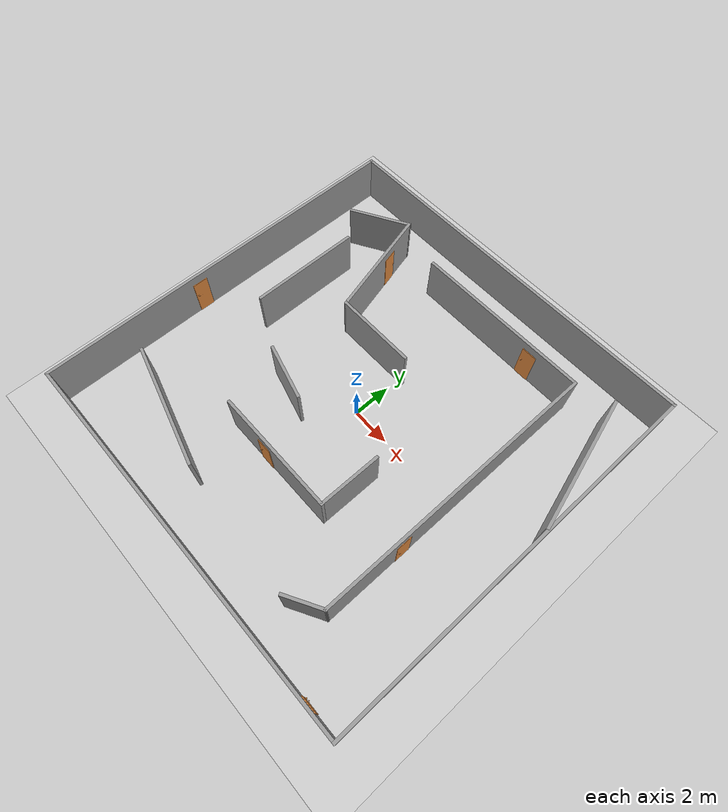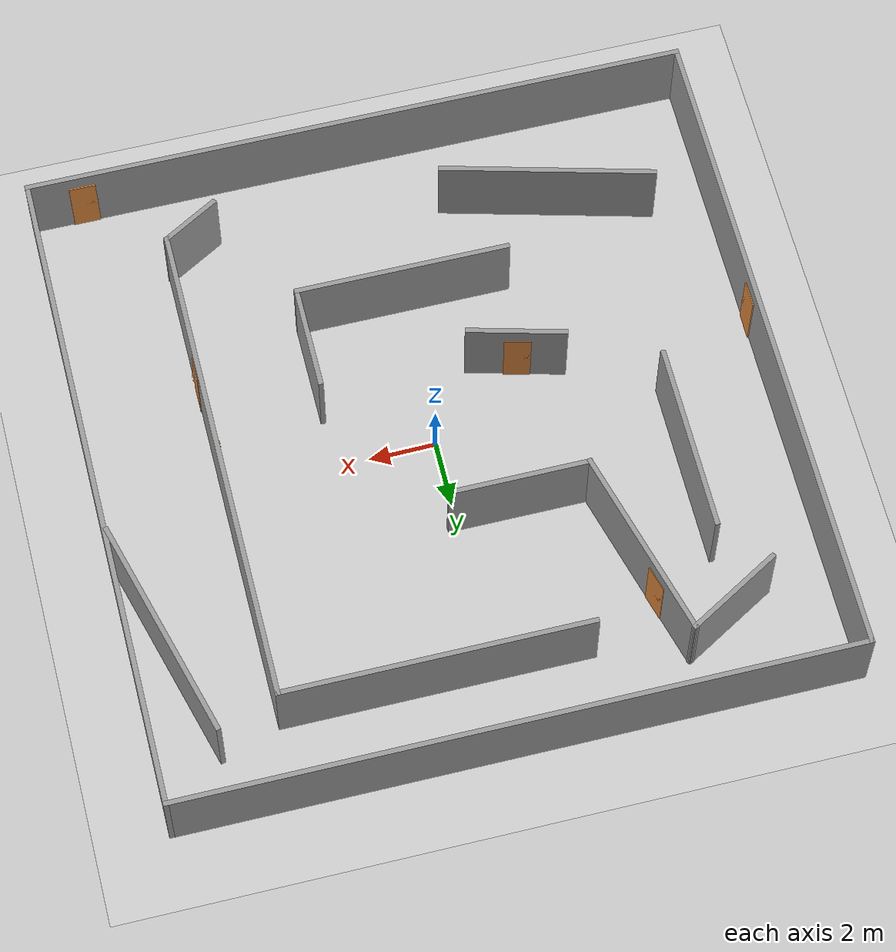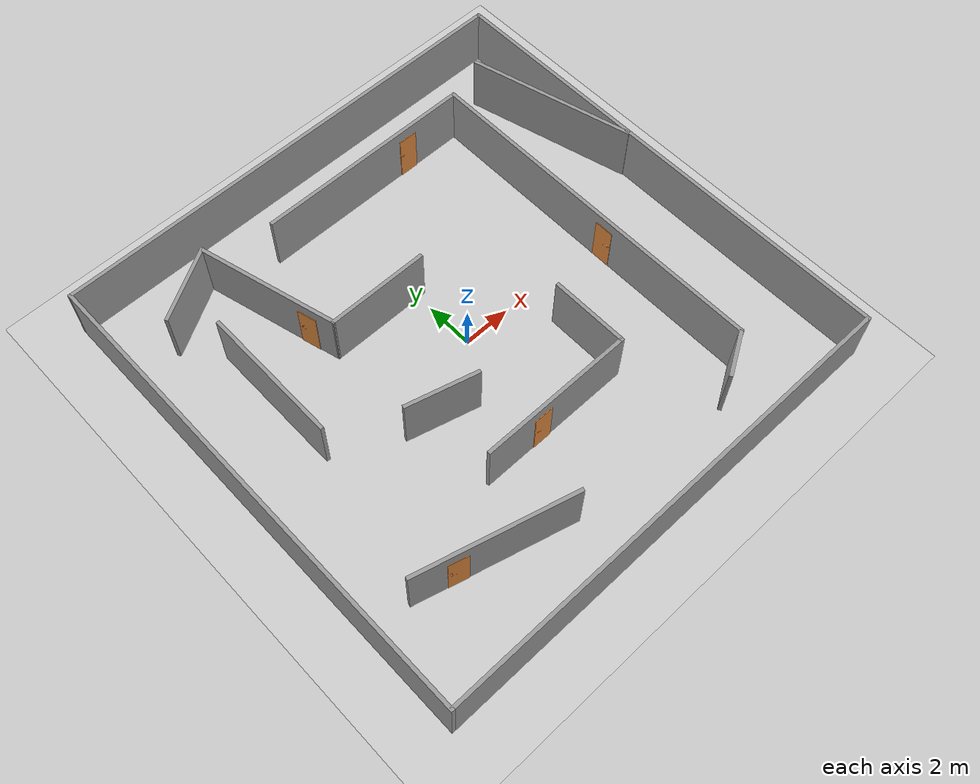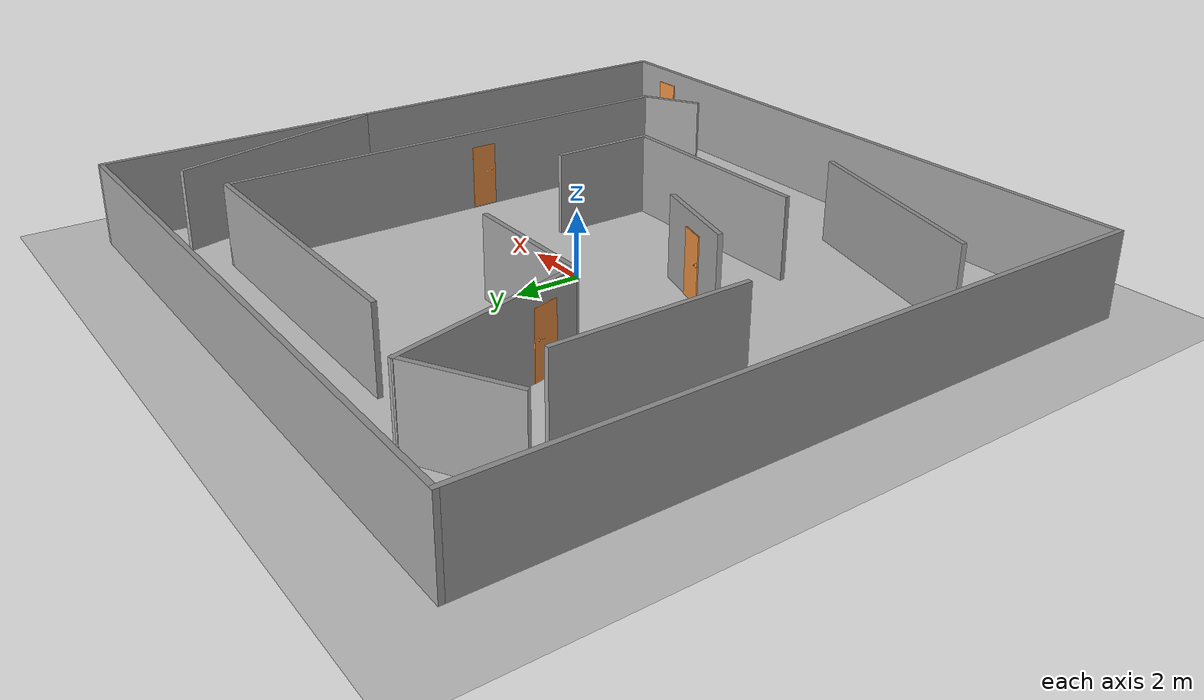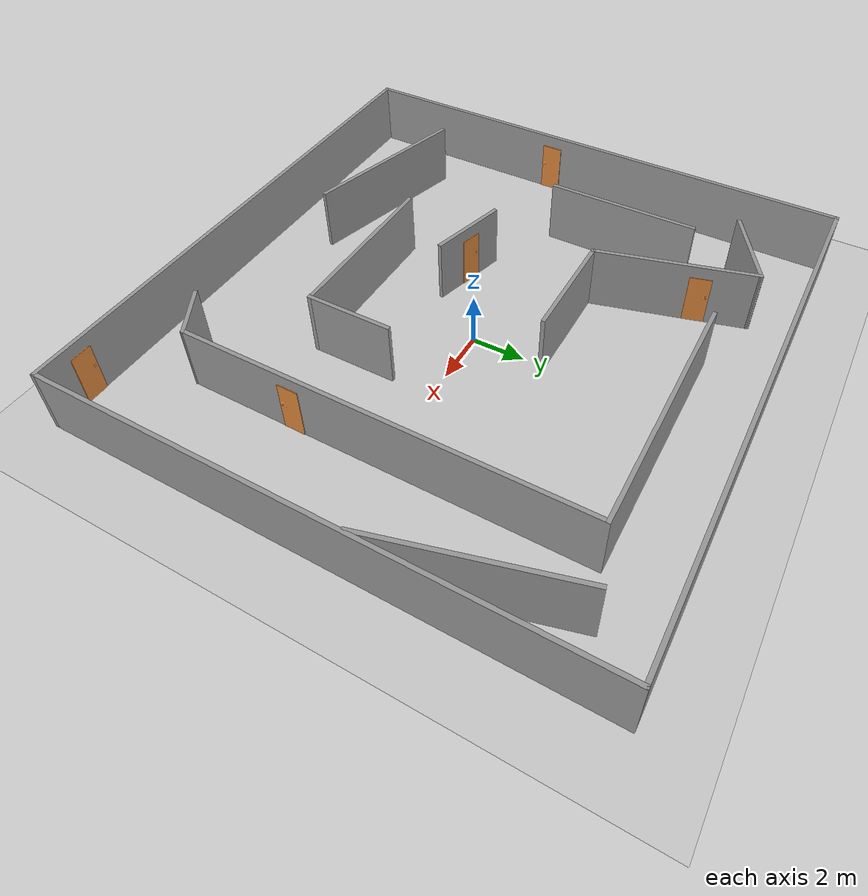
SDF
<sdf version="1.6">
 <world name="default">
  <light name="sun" type="directional">
   <pose>0 0 10 0 -0 0</pose>
   <diffuse>0.8 0.8 0.8 1</diffuse>
   <specular>0.2 0.2 0.2 1</specular>
   <attenuation>
    <range>1000</range>
    <constant>0.9</constant>
    <linear>0.01</linear>
    <quadratic>0.001</quadratic>
   </attenuation>
   <direction>-0.5 0.1 -0.9</direction>
  </light>
  <model name="ground_plane">
   <static>1</static>
   <link name="link">
    <collision name="collision">
     <geometry><plane><normal>0 0 1</normal><size>100 100</size></plane></geometry>
     <surface>
      <contact><collide_bitmask>65535</collide_bitmask></contact>
      <friction><ode><mu>100</mu><mu2>50</mu2></ode></friction>
     </surface>
    </collision>
    <visual name="visual">
     <cast_shadows>0</cast_shadows>
     <geometry><plane><normal>0 0 1</normal><size>100 100</size></plane></geometry>
     <material>
      <script><uri>file://media/materials/scripts/gazebo.material</uri><name>Gazebo/Grey</name></script>
     </material>
    </visual>
   </link>
  </model>
  <gravity>0 0 -9.8</gravity>
  <magnetic_field>6e-06 2.3e-05 -4.2e-05</magnetic_field>
  <atmosphere type="adiabatic"/>
  <physics name="default_physics" default="0" type="ode">
   <max_step_size>0.001</max_step_size>
   <real_time_factor>1</real_time_factor>
   <real_time_update_rate>1000</real_time_update_rate>
  </physics>
  <scene><ambient>0.4 0.4 0.4 1</ambient><background>0.7 0.7 0.7 1</background><shadows>1</shadows></scene>
  <audio><device>default</device></audio>
  <spherical_coordinates>
   <surface_model>EARTH_WGS84</surface_model>
   <latitude_deg>0</latitude_deg>
   <longitude_deg>0</longitude_deg>
   <elevation>0</elevation>
   <heading_deg>0</heading_deg>
  </spherical_coordinates>
  <model name="random">
   <link name="Wall_10">
    <collision name="Wall_10_Collision">
     <geometry><box><size>3 0.15 2.5</size></box></geometry>
     <pose>0 0 1.25 0 -0 0</pose>
    </collision>
    <visual name="Wall_10_Visual">
     <pose>0 0 1.25 0 -0 0</pose>
     <geometry><box><size>3 0.15 2.5</size></box></geometry>
     <material>
      <script><uri>file://media/materials/scripts/gazebo.material</uri><name>Gazebo/Grey</name></script>
      <ambient>1 1 1 1</ambient>
     </material>
     <meta><layer>0</layer></meta>
    </visual>
    <pose>-2.88006 -1.82082 0 0 -0 -0.261799</pose>
   </link>
   <link name="Wall_12">
    <collision name="Wall_12_Collision">
     <geometry><box><size>3.25 0.15 2.5</size></box></geometry>
     <pose>0 0 1.25 0 -0 0</pose>
    </collision>
    <visual name="Wall_12_Visual">
     <pose>0 0 1.25 0 -0 0</pose>
     <geometry><box><size>3.25 0.15 2.5</size></box></geometry>
     <material>
      <script><uri>file://media/materials/scripts/gazebo.material</uri><name>Gazebo/Grey</name></script>
      <ambient>1 1 1 1</ambient>
     </material>
     <meta><layer>0</layer></meta>
    </visual>
    <pose>3.023 -3.1055 0 0 -0 -1.5708</pose>
   </link>
   <link name="Wall_13">
    <collision name="Wall_13_Collision">
     <geometry><box><size>6.5 0.15 2.5</size></box></geometry>
     <pose>0 0 1.25 0 -0 0</pose>
    </collision>
    <visual name="Wall_13_Visual">
     <pose>0 0 1.25 0 -0 0</pose>
     <geometry><box><size>6.5 0.15 2.5</size></box></geometry>
     <material>
      <script><uri>file://media/materials/scripts/gazebo.material</uri><name>Gazebo/Grey</name></script>
      <ambient>1 1 1 1</ambient>
     </material>
     <meta><layer>0</layer></meta>
    </visual>
    <pose>-0.152 -4.6555 0 0 -0 3.14159</pose>
   </link>
   <link name="Wall_15">
    <collision name="Wall_15_Collision">
     <geometry><box><size>5.75 0.15 2.5</size></box></geometry>
     <pose>0 0 1.25 0 -0 0</pose>
    </collision>
    <visual name="Wall_15_Visual">
     <pose>0 0 1.25 0 -0 0</pose>
     <geometry><box><size>5.75 0.15 2.5</size></box></geometry>
     <material>
      <script><uri>file://media/materials/scripts/gazebo.material</uri><name>Gazebo/Grey</name></script>
      <ambient>1 1 1 1</ambient>
     </material>
     <meta><layer>0</layer></meta>
    </visual>
    <pose>-6.8325 2.682 0 0 -0 1.5708</pose>
   </link>
   <link name="Wall_17">
    <collision name="Wall_17_Collision">
     <geometry><box><size>9.25 0.15 2.5</size></box></geometry>
     <pose>0 0 1.25 0 -0 0</pose>
    </collision>
    <visual name="Wall_17_Visual">
     <pose>0 0 1.25 0 -0 0</pose>
     <geometry><box><size>9.25 0.15 2.5</size></box></geometry>
     <material>
      <script><uri>file://media/materials/scripts/gazebo.material</uri><name>Gazebo/Grey</name></script>
      <ambient>1 1 1 1</ambient>
     </material>
     <meta><layer>0</layer></meta>
    </visual>
    <pose>1.7951 7.57362 0 0 -0 0</pose>
   </link>
   <link name="Wall_18">
    <collision name="Wall_18_Collision">
     <geometry><box><size>15 0.15 2.5</size></box></geometry>
     <pose>0 0 1.25 0 -0 0</pose>
    </collision>
    <visual name="Wall_18_Visual">
     <pose>0 0 1.25 0 -0 0</pose>
     <geometry><box><size>15 0.15 2.5</size></box></geometry>
     <material>
      <script><uri>file://media/materials/scripts/gazebo.material</uri><name>Gazebo/Grey</name></script>
      <ambient>1 1 1 1</ambient>
     </material>
     <meta><layer>0</layer></meta>
    </visual>
    <pose>6.3451 0.148619 0 0 -0 -1.5708</pose>
   </link>
   <link name="Wall_19">
    <collision name="Wall_19_Collision">
     <geometry><box><size>2 0.15 2.5</size></box></geometry>
     <pose>0 0 1.25 0 -0 0</pose>
    </collision>
    <visual name="Wall_19_Visual">
     <pose>0 0 1.25 0 -0 0</pose>
     <geometry><box><size>2 0.15 2.5</size></box></geometry>
     <material>
      <script><uri>file://media/materials/scripts/gazebo.material</uri><name>Gazebo/Grey</name></script>
      <ambient>1 1 1 1</ambient>
     </material>
     <meta><layer>0</layer></meta>
    </visual>
    <pose>5.54403 -7.73888 0 0 -0 -2.61799</pose>
   </link>
   <link name="Wall_2">
    <collision name="Wall_2_Collision">
     <geometry><box><size>20.15 0.15 2.5</size></box></geometry>
     <pose>0 0 1.25 0 -0 0</pose>
    </collision>
    <visual name="Wall_2_Visual">
     <pose>0 0 1.25 0 -0 0</pose>
     <geometry><box><size>20.15 0.15 2.5</size></box></geometry>
     <material>
      <script><uri>file://media/materials/scripts/gazebo.material</uri><name>Gazebo/Grey</name></script>
      <ambient>1 1 1 1</ambient>
     </material>
     <meta><layer>0</layer></meta>
    </visual>
    <pose>10 0 0 0 -0 -1.5708</pose>
   </link>
   <link name="Wall_21">
    <collision name="Wall_21_Collision">
     <geometry><box><size>4.25 0.15 2.5</size></box></geometry>
     <pose>0 0 1.25 0 -0 0</pose>
    </collision>
    <visual name="Wall_21_Visual">
     <pose>0 0 1.25 0 -0 0</pose>
     <geometry><box><size>4.25 0.15 2.5</size></box></geometry>
     <material>
      <script><uri>file://media/materials/scripts/gazebo.material</uri><name>Gazebo/Grey</name></script>
      <ambient>1 1 1 1</ambient>
     </material>
     <meta><layer>0</layer></meta>
    </visual>
    <pose>-1.81119 2.75941 0 0 -0 3.14159</pose>
   </link>
   <link name="Wall_22">
    <collision name="Wall_22_Collision">
     <geometry><box><size>6 0.15 2.5</size></box></geometry>
     <pose>0 0 1.25 0 -0 0</pose>
    </collision>
    <visual name="Wall_22_Visual">
     <pose>0 0 1.25 0 -0 0</pose>
     <geometry><box><size>6 0.15 2.5</size></box></geometry>
     <material>
      <script><uri>file://media/materials/scripts/gazebo.material</uri><name>Gazebo/Grey</name></script>
      <ambient>1 1 1 1</ambient>
     </material>
     <meta><layer>0</layer></meta>
    </visual>
    <pose>-4.61823 5.58474 0 0 -0 1.8326</pose>
   </link>
   <link name="Wall_23">
    <collision name="Wall_23_Collision">
     <geometry><box><size>3.25 0.15 2.5</size></box></geometry>
     <pose>0 0 1.25 0 -0 0</pose>
    </collision>
    <visual name="Wall_23_Visual">
     <pose>0 0 1.25 0 -0 0</pose>
     <geometry><box><size>3.25 0.15 2.5</size></box></geometry>
     <material>
      <script><uri>file://media/materials/scripts/gazebo.material</uri><name>Gazebo/Grey</name></script>
      <ambient>1 1 1 1</ambient>
     </material>
     <meta><layer>0</layer></meta>
    </visual>
    <pose>-6.71762 7.63507 0 0 -0 -2.61799</pose>
   </link>
   <link name="Wall_25">
    <collision name="Wall_25_Collision">
     <geometry><box><size>6.5 0.15 2.5</size></box></geometry>
     <pose>0 0 1.25 0 -0 0</pose>
    </collision>
    <visual name="Wall_25_Visual">
     <pose>0 0 1.25 0 -0 0</pose>
     <geometry><box><size>6.5 0.15 2.5</size></box></geometry>
     <material>
      <script><uri>file://media/materials/scripts/gazebo.material</uri><name>Gazebo/Grey</name></script>
      <ambient>1 1 1 1</ambient>
     </material>
     <meta><layer>0</layer></meta>
    </visual>
    <pose>-5.14959 -6.88166 0 0 -0 -0.261799</pose>
   </link>
   <link name="Wall_27">
    <collision name="Wall_27_Collision">
     <geometry><box><size>7 0.15 2.5</size></box></geometry>
     <pose>0 0 1.25 0 -0 0</pose>
    </collision>
    <visual name="Wall_27_Visual">
     <pose>0 0 1.25 0 -0 0</pose>
     <geometry><box><size>7 0.15 2.5</size></box></geometry>
     <material>
      <script><uri>file://media/materials/scripts/gazebo.material</uri><name>Gazebo/Grey</name></script>
      <ambient>1 1 1 1</ambient>
     </material>
     <meta><layer>0</layer></meta>
    </visual>
    <pose>9.05456 4.87216 0 0 -0 -1.309</pose>
   </link>
   <link name="Wall_4">
    <collision name="Wall_4_Collision">
     <geometry><box><size>20.15 0.15 2.5</size></box></geometry>
     <pose>0 0 1.25 0 -0 0</pose>
    </collision>
    <visual name="Wall_4_Visual">
     <pose>0 0 1.25 0 -0 0</pose>
     <geometry><box><size>20.15 0.15 2.5</size></box></geometry>
     <material>
      <script><uri>file://media/materials/scripts/gazebo.material</uri><name>Gazebo/Grey</name></script>
      <ambient>1 1 1 1</ambient>
     </material>
     <meta><layer>0</layer></meta>
    </visual>
    <pose>0 10 0 0 -0 3.14159</pose>
   </link>
   <link name="Wall_6">
    <collision name="Wall_6_Collision">
     <geometry><box><size>20.15 0.15 2.5</size></box></geometry>
     <pose>0 0 1.25 0 -0 0</pose>
    </collision>
    <visual name="Wall_6_Visual">
     <pose>0 0 1.25 0 -0 0</pose>
     <geometry><box><size>20.15 0.15 2.5</size></box></geometry>
     <material>
      <script><uri>file://media/materials/scripts/gazebo.material</uri><name>Gazebo/Grey</name></script>
      <ambient>1 1 1 1</ambient>
     </material>
     <meta><layer>0</layer></meta>
    </visual>
    <pose>0 -10 0 0 -0 3.14159</pose>
   </link>
   <link name="Wall_8">
    <collision name="Wall_8_Collision">
     <geometry><box><size>20.15 0.15 2.5</size></box></geometry>
     <pose>0 0 1.25 0 -0 0</pose>
    </collision>
    <visual name="Wall_8_Visual">
     <pose>0 0 1.25 0 -0 0</pose>
     <geometry><box><size>20.15 0.15 2.5</size></box></geometry>
     <material>
      <script><uri>file://media/materials/scripts/gazebo.material</uri><name>Gazebo/Grey</name></script>
      <ambient>1 1 1 1</ambient>
     </material>
     <meta><layer>0</layer></meta>
    </visual>
    <pose>-10 0 0 0 -0 -1.5708</pose>
   </link>
   <static>1</static>
  </model>
  <model name="door_stand">
   <model name="door">
    <link name="link_0">
     <inertial>
      <mass>1</mass>
      <inertia>
       <ixx>0.166667</ixx>
       <ixy>0</ixy>
       <ixz>0</ixz>
       <iyy>0.166667</iyy>
       <iyz>0</iyz>
       <izz>0.166667</izz>
      </inertia>
     </inertial>
     <visual name="visual">
      <geometry>
       <mesh><uri>/home/msjun-xavier/Downloads/door_C.obj</uri><scale>0.002 0.002 0.001</scale></mesh>
      </geometry>
      <material>
       <lighting>1</lighting>
       <script><uri>file://media/materials/scripts/gazebo.material</uri><name>Gazebo/Grey</name></script>
       <shader type="vertex"><normal_map>__default__</normal_map></shader>
       <ambient>0.875 0.533 0.239 1</ambient>
       <diffuse>0.7 0.7 0.7 1</diffuse>
       <specular>0.01 0.01 0.01 1</specular>
       <emissive>0 0 0 1</emissive>
      </material>
     </visual>
     <collision name="collision">
      <geometry>
       <mesh><uri>/home/msjun-xavier/Downloads/door_C.obj</uri><scale>0.002 0.002 0.001</scale></mesh>
      </geometry>
      <surface>
       <friction>
        <ode><mu>1</mu><mu2>1</mu2><fdir1>0 0 0</fdir1><slip1>0</slip1><slip2>0</slip2></ode>
        <torsional>
         <coefficient>1</coefficient>
         <patch_radius>0</patch_radius>
         <surface_radius>0</surface_radius>
         <use_patch_radius>1</use_patch_radius>
         <ode><slip>0</slip></ode>
        </torsional>
       </friction>
       <bounce><restitution_coefficient>0</restitution_coefficient><threshold>1e+06</threshold></bounce>
       <contact>
        <collide_without_contact>0</collide_without_contact>
        <collide_without_contact_bitmask>1</collide_without_contact_bitmask>
        <collide_bitmask>1</collide_bitmask>
        <ode>
         <soft_cfm>0</soft_cfm>
         <soft_erp>0.2</soft_erp>
         <kp>1e+13</kp>
         <kd>1</kd>
         <max_vel>0.01</max_vel>
         <min_depth>0</min_depth>
        </ode>
        <bullet>
         <split_impulse>1</split_impulse>
         <split_impulse_penetration_threshold>-0.01</split_impulse_penetration_threshold>
         <soft_cfm>0</soft_cfm>
         <soft_erp>0.2</soft_erp>
         <kp>1e+13</kp>
         <kd>1</kd>
        </bullet>
       </contact>
      </surface>
     </collision>
    </link>
    <static>1</static>
    <pose>1e-06 5e-06 0 3.09892 1.53609 -1.61633</pose>
   </model>
   <static>0</static>
   <pose>3.70681 7.37535 1.06405 0 -0 0</pose>
  </model>
  <model name="door_stand_0">
   <model name="door">
    <link name="link_0">
     <inertial>
      <mass>1</mass>
      <inertia>
       <ixx>0.166667</ixx>
       <ixy>0</ixy>
       <ixz>0</ixz>
       <iyy>0.166667</iyy>
       <iyz>0</iyz>
       <izz>0.166667</izz>
      </inertia>
     </inertial>
     <visual name="visual">
      <geometry>
       <mesh><uri>/home/msjun-xavier/Downloads/door_C.obj</uri><scale>0.002 0.002 0.001</scale></mesh>
      </geometry>
      <material>
       <lighting>1</lighting>
       <script><uri>file://media/materials/scripts/gazebo.material</uri><name>Gazebo/Grey</name></script>
       <shader type="vertex"><normal_map>__default__</normal_map></shader>
       <ambient>0.875 0.533 0.239 1</ambient>
       <diffuse>0.7 0.7 0.7 1</diffuse>
       <specular>0.01 0.01 0.01 1</specular>
       <emissive>0 0 0 1</emissive>
      </material>
     </visual>
     <collision name="collision">
      <geometry>
       <mesh><uri>/home/msjun-xavier/Downloads/door_C.obj</uri><scale>0.002 0.002 0.001</scale></mesh>
      </geometry>
      <surface>
       <friction>
        <ode><mu>1</mu><mu2>1</mu2><fdir1>0 0 0</fdir1><slip1>0</slip1><slip2>0</slip2></ode>
        <torsional>
         <coefficient>1</coefficient>
         <patch_radius>0</patch_radius>
         <surface_radius>0</surface_radius>
         <use_patch_radius>1</use_patch_radius>
         <ode><slip>0</slip></ode>
        </torsional>
       </friction>
       <bounce><restitution_coefficient>0</restitution_coefficient><threshold>1e+06</threshold></bounce>
       <contact>
        <collide_without_contact>0</collide_without_contact>
        <collide_without_contact_bitmask>1</collide_without_contact_bitmask>
        <collide_bitmask>1</collide_bitmask>
        <ode>
         <soft_cfm>0</soft_cfm>
         <soft_erp>0.2</soft_erp>
         <kp>1e+13</kp>
         <kd>1</kd>
         <max_vel>0.01</max_vel>
         <min_depth>0</min_depth>
        </ode>
        <bullet>
         <split_impulse>1</split_impulse>
         <split_impulse_penetration_threshold>-0.01</split_impulse_penetration_threshold>
         <soft_cfm>0</soft_cfm>
         <soft_erp>0.2</soft_erp>
         <kp>1e+13</kp>
         <kd>1</kd>
        </bullet>
       </contact>
      </surface>
     </collision>
    </link>
    <static>1</static>
    <pose>1e-06 5e-06 0 3.09892 1.53609 -1.61633</pose>
   </model>
   <static>0</static>
   <pose>6.38084 -0.863586 1.07618 0 -0 1.5708</pose>
  </model>
  <model name="door_stand_1">
   <model name="door">
    <link name="link_0">
     <inertial>
      <mass>1</mass>
      <inertia>
       <ixx>0.166667</ixx>
       <ixy>0</ixy>
       <ixz>0</ixz>
       <iyy>0.166667</iyy>
       <iyz>0</iyz>
       <izz>0.166667</izz>
      </inertia>
     </inertial>
     <visual name="visual">
      <geometry>
       <mesh><uri>/home/msjun-xavier/Downloads/door_C.obj</uri><scale>0.002 0.002 0.001</scale></mesh>
      </geometry>
      <material>
       <lighting>1</lighting>
       <script><uri>file://media/materials/scripts/gazebo.material</uri><name>Gazebo/Grey</name></script>
       <shader type="vertex"><normal_map>__default__</normal_map></shader>
       <ambient>0.875 0.533 0.239 1</ambient>
       <diffuse>0.7 0.7 0.7 1</diffuse>
       <specular>0.01 0.01 0.01 1</specular>
       <emissive>0 0 0 1</emissive>
      </material>
     </visual>
     <collision name="collision">
      <geometry>
       <mesh><uri>/home/msjun-xavier/Downloads/door_C.obj</uri><scale>0.002 0.002 0.001</scale></mesh>
      </geometry>
      <surface>
       <friction>
        <ode><mu>1</mu><mu2>1</mu2><fdir1>0 0 0</fdir1><slip1>0</slip1><slip2>0</slip2></ode>
        <torsional>
         <coefficient>1</coefficient>
         <patch_radius>0</patch_radius>
         <surface_radius>0</surface_radius>
         <use_patch_radius>1</use_patch_radius>
         <ode><slip>0</slip></ode>
        </torsional>
       </friction>
       <bounce><restitution_coefficient>0</restitution_coefficient><threshold>1e+06</threshold></bounce>
       <contact>
        <collide_without_contact>0</collide_without_contact>
        <collide_without_contact_bitmask>1</collide_without_contact_bitmask>
        <collide_bitmask>1</collide_bitmask>
        <ode>
         <soft_cfm>0</soft_cfm>
         <soft_erp>0.2</soft_erp>
         <kp>1e+13</kp>
         <kd>1</kd>
         <max_vel>0.01</max_vel>
         <min_depth>0</min_depth>
        </ode>
        <bullet>
         <split_impulse>1</split_impulse>
         <split_impulse_penetration_threshold>-0.01</split_impulse_penetration_threshold>
         <soft_cfm>0</soft_cfm>
         <soft_erp>0.2</soft_erp>
         <kp>1e+13</kp>
         <kd>1</kd>
        </bullet>
       </contact>
      </surface>
     </collision>
    </link>
    <static>1</static>
    <pose>1e-06 5e-06 0 3.09892 1.53609 -1.61633</pose>
   </model>
   <static>0</static>
   <pose>-3.03167 -1.80133 1.06405 -0 -0 -0.262828</pose>
  </model>
  <model name="door_stand_2">
   <model name="door">
    <link name="link_0">
     <inertial>
      <mass>1</mass>
      <inertia>
       <ixx>0.166667</ixx>
       <ixy>0</ixy>
       <ixz>0</ixz>
       <iyy>0.166667</iyy>
       <iyz>0</iyz>
       <izz>0.166667</izz>
      </inertia>
     </inertial>
     <visual name="visual">
      <geometry>
       <mesh><uri>/home/msjun-xavier/Downloads/door_C.obj</uri><scale>0.002 0.002 0.001</scale></mesh>
      </geometry>
      <material>
       <lighting>1</lighting>
       <script><uri>file://media/materials/scripts/gazebo.material</uri><name>Gazebo/Grey</name></script>
       <shader type="vertex"><normal_map>__default__</normal_map></shader>
       <ambient>0.875 0.533 0.239 1</ambient>
       <diffuse>0.7 0.7 0.7 1</diffuse>
       <specular>0.01 0.01 0.01 1</specular>
       <emissive>0 0 0 1</emissive>
      </material>
     </visual>
     <collision name="collision">
      <geometry>
       <mesh><uri>/home/msjun-xavier/Downloads/door_C.obj</uri><scale>0.002 0.002 0.001</scale></mesh>
      </geometry>
      <surface>
       <friction>
        <ode><mu>1</mu><mu2>1</mu2><fdir1>0 0 0</fdir1><slip1>0</slip1><slip2>0</slip2></ode>
        <torsional>
         <coefficient>1</coefficient>
         <patch_radius>0</patch_radius>
         <surface_radius>0</surface_radius>
         <use_patch_radius>1</use_patch_radius>
         <ode><slip>0</slip></ode>
        </torsional>
       </friction>
       <bounce><restitution_coefficient>0</restitution_coefficient><threshold>1e+06</threshold></bounce>
       <contact>
        <collide_without_contact>0</collide_without_contact>
        <collide_without_contact_bitmask>1</collide_without_contact_bitmask>
        <collide_bitmask>1</collide_bitmask>
        <ode>
         <soft_cfm>0</soft_cfm>
         <soft_erp>0.2</soft_erp>
         <kp>1e+13</kp>
         <kd>1</kd>
         <max_vel>0.01</max_vel>
         <min_depth>0</min_depth>
        </ode>
        <bullet>
         <split_impulse>1</split_impulse>
         <split_impulse_penetration_threshold>-0.01</split_impulse_penetration_threshold>
         <soft_cfm>0</soft_cfm>
         <soft_erp>0.2</soft_erp>
         <kp>1e+13</kp>
         <kd>1</kd>
        </bullet>
       </contact>
      </surface>
     </collision>
    </link>
    <static>1</static>
    <pose>1e-06 5e-06 0 3.09892 1.53609 -1.61633</pose>
   </model>
   <static>0</static>
   <pose>-0.949542 -4.85347 1.06405 0 -0 0</pose>
  </model>
  <model name="door_stand_3">
   <model name="door">
    <link name="link_0">
     <inertial>
      <mass>1</mass>
      <inertia>
       <ixx>0.166667</ixx>
       <ixy>0</ixy>
       <ixz>0</ixz>
       <iyy>0.166667</iyy>
       <iyz>0</iyz>
       <izz>0.166667</izz>
      </inertia>
     </inertial>
     <visual name="visual">
      <geometry>
       <mesh><uri>/home/msjun-xavier/Downloads/door_C.obj</uri><scale>0.002 0.002 0.001</scale></mesh>
      </geometry>
      <material>
       <lighting>1</lighting>
       <script><uri>file://media/materials/scripts/gazebo.material</uri><name>Gazebo/Grey</name></script>
       <shader type="vertex"><normal_map>__default__</normal_map></shader>
       <ambient>0.875 0.533 0.239 1</ambient>
       <diffuse>0.7 0.7 0.7 1</diffuse>
       <specular>0.01 0.01 0.01 1</specular>
       <emissive>0 0 0 1</emissive>
      </material>
     </visual>
     <collision name="collision">
      <geometry>
       <mesh><uri>/home/msjun-xavier/Downloads/door_C.obj</uri><scale>0.002 0.002 0.001</scale></mesh>
      </geometry>
      <surface>
       <friction>
        <ode><mu>1</mu><mu2>1</mu2><fdir1>0 0 0</fdir1><slip1>0</slip1><slip2>0</slip2></ode>
        <torsional>
         <coefficient>1</coefficient>
         <patch_radius>0</patch_radius>
         <surface_radius>0</surface_radius>
         <use_patch_radius>1</use_patch_radius>
         <ode><slip>0</slip></ode>
        </torsional>
       </friction>
       <bounce><restitution_coefficient>0</restitution_coefficient><threshold>1e+06</threshold></bounce>
       <contact>
        <collide_without_contact>0</collide_without_contact>
        <collide_without_contact_bitmask>1</collide_without_contact_bitmask>
        <collide_bitmask>1</collide_bitmask>
        <ode>
         <soft_cfm>0</soft_cfm>
         <soft_erp>0.2</soft_erp>
         <kp>1e+13</kp>
         <kd>1</kd>
         <max_vel>0.01</max_vel>
         <min_depth>0</min_depth>
        </ode>
        <bullet>
         <split_impulse>1</split_impulse>
         <split_impulse_penetration_threshold>-0.01</split_impulse_penetration_threshold>
         <soft_cfm>0</soft_cfm>
         <soft_erp>0.2</soft_erp>
         <kp>1e+13</kp>
         <kd>1</kd>
        </bullet>
       </contact>
      </surface>
     </collision>
    </link>
    <static>1</static>
    <pose>1e-06 5e-06 0 3.09892 1.53609 -1.61633</pose>
   </model>
   <static>0</static>
   <pose>-4.93339 6.6173 1.06405 0 -0 -1.30205</pose>
  </model>
  <model name="door_stand_4">
   <model name="door">
    <link name="link_0">
     <inertial>
      <mass>1</mass>
      <inertia>
       <ixx>0.166667</ixx>
       <ixy>0</ixy>
       <ixz>0</ixz>
       <iyy>0.166667</iyy>
       <iyz>0</iyz>
       <izz>0.166667</izz>
      </inertia>
     </inertial>
     <visual name="visual">
      <geometry>
       <mesh><uri>/home/msjun-xavier/Downloads/door_C.obj</uri><scale>0.002 0.002 0.001</scale></mesh>
      </geometry>
      <material>
       <lighting>1</lighting>
       <script><uri>file://media/materials/scripts/gazebo.material</uri><name>Gazebo/Grey</name></script>
       <shader type="vertex"><normal_map>__default__</normal_map></shader>
       <ambient>0.875 0.533 0.239 1</ambient>
       <diffuse>0.7 0.7 0.7 1</diffuse>
       <specular>0.01 0.01 0.01 1</specular>
       <emissive>0 0 0 1</emissive>
      </material>
     </visual>
     <collision name="collision">
      <geometry>
       <mesh><uri>/home/msjun-xavier/Downloads/door_C.obj</uri><scale>0.002 0.002 0.001</scale></mesh>
      </geometry>
      <surface>
       <friction>
        <ode><mu>1</mu><mu2>1</mu2><fdir1>0 0 0</fdir1><slip1>0</slip1><slip2>0</slip2></ode>
        <torsional>
         <coefficient>1</coefficient>
         <patch_radius>0</patch_radius>
         <surface_radius>0</surface_radius>
         <use_patch_radius>1</use_patch_radius>
         <ode><slip>0</slip></ode>
        </torsional>
       </friction>
       <bounce><restitution_coefficient>0</restitution_coefficient><threshold>1e+06</threshold></bounce>
       <contact>
        <collide_without_contact>0</collide_without_contact>
        <collide_without_contact_bitmask>1</collide_without_contact_bitmask>
        <collide_bitmask>1</collide_bitmask>
        <ode>
         <soft_cfm>0</soft_cfm>
         <soft_erp>0.2</soft_erp>
         <kp>1e+13</kp>
         <kd>1</kd>
         <max_vel>0.01</max_vel>
         <min_depth>0</min_depth>
        </ode>
        <bullet>
         <split_impulse>1</split_impulse>
         <split_impulse_penetration_threshold>-0.01</split_impulse_penetration_threshold>
         <soft_cfm>0</soft_cfm>
         <soft_erp>0.2</soft_erp>
         <kp>1e+13</kp>
         <kd>1</kd>
        </bullet>
       </contact>
      </surface>
     </collision>
    </link>
    <static>1</static>
    <pose>1e-06 5e-06 0 3.09892 1.53609 -1.61633</pose>
   </model>
   <static>0</static>
   <pose>6.53429 -3.21646 1.06405 0 -0 1.5708</pose>
  </model>
  <model name="door_stand_5">
   <model name="door">
    <link name="link_0">
     <inertial>
      <mass>1</mass>
      <inertia>
       <ixx>0.166667</ixx>
       <ixy>0</ixy>
       <ixz>0</ixz>
       <iyy>0.166667</iyy>
       <iyz>0</iyz>
       <izz>0.166667</izz>
      </inertia>
     </inertial>
     <visual name="visual">
      <geometry>
       <mesh><uri>/home/msjun-xavier/Downloads/door_C.obj</uri><scale>0.002 0.002 0.001</scale></mesh>
      </geometry>
      <material>
       <lighting>1</lighting>
       <script><uri>file://media/materials/scripts/gazebo.material</uri><name>Gazebo/Grey</name></script>
       <shader type="vertex"><normal_map>__default__</normal_map></shader>
       <ambient>0.875 0.533 0.239 1</ambient>
       <diffuse>0.7 0.7 0.7 1</diffuse>
       <specular>0.01 0.01 0.01 1</specular>
       <emissive>0 0 0 1</emissive>
      </material>
     </visual>
     <collision name="collision">
      <geometry>
       <mesh><uri>/home/msjun-xavier/Downloads/door_C.obj</uri><scale>0.002 0.002 0.001</scale></mesh>
      </geometry>
      <surface>
       <friction>
        <ode><mu>1</mu><mu2>1</mu2><fdir1>0 0 0</fdir1><slip1>0</slip1><slip2>0</slip2></ode>
        <torsional>
         <coefficient>1</coefficient>
         <patch_radius>0</patch_radius>
         <surface_radius>0</surface_radius>
         <use_patch_radius>1</use_patch_radius>
         <ode><slip>0</slip></ode>
        </torsional>
       </friction>
       <bounce><restitution_coefficient>0</restitution_coefficient><threshold>1e+06</threshold></bounce>
       <contact>
        <collide_without_contact>0</collide_without_contact>
        <collide_without_contact_bitmask>1</collide_without_contact_bitmask>
        <collide_bitmask>1</collide_bitmask>
        <ode>
         <soft_cfm>0</soft_cfm>
         <soft_erp>0.2</soft_erp>
         <kp>1e+13</kp>
         <kd>1</kd>
         <max_vel>0.01</max_vel>
         <min_depth>0</min_depth>
        </ode>
        <bullet>
         <split_impulse>1</split_impulse>
         <split_impulse_penetration_threshold>-0.01</split_impulse_penetration_threshold>
         <soft_cfm>0</soft_cfm>
         <soft_erp>0.2</soft_erp>
         <kp>1e+13</kp>
         <kd>1</kd>
        </bullet>
       </contact>
      </surface>
     </collision>
    </link>
    <static>1</static>
    <pose>1e-06 5e-06 0 3.09892 1.53609 -1.61633</pose>
   </model>
   <static>0</static>
   <pose>-4.37874 3.94523 1.06405 0 -0 -1.30544</pose>
  </model>
  <model name="door_stand_6">
   <model name="door">
    <link name="link_0">
     <inertial>
      <mass>1</mass>
      <inertia>
       <ixx>0.166667</ixx>
       <ixy>0</ixy>
       <ixz>0</ixz>
       <iyy>0.166667</iyy>
       <iyz>0</iyz>
       <izz>0.166667</izz>
      </inertia>
     </inertial>
     <visual name="visual">
      <geometry>
       <mesh><uri>/home/msjun-xavier/Downloads/door_C.obj</uri><scale>0.002 0.002 0.001</scale></mesh>
      </geometry>
      <material>
       <lighting>1</lighting>
       <script><uri>file://media/materials/scripts/gazebo.material</uri><name>Gazebo/Grey</name></script>
       <shader type="vertex"><normal_map>__default__</normal_map></shader>
       <ambient>0.875 0.533 0.239 1</ambient>
       <diffuse>0.7 0.7 0.7 1</diffuse>
       <specular>0.01 0.01 0.01 1</specular>
       <emissive>0 0 0 1</emissive>
      </material>
     </visual>
     <collision name="collision">
      <geometry>
       <mesh><uri>/home/msjun-xavier/Downloads/door_C.obj</uri><scale>0.002 0.002 0.001</scale></mesh>
      </geometry>
      <surface>
       <friction>
        <ode><mu>1</mu><mu2>1</mu2><fdir1>0 0 0</fdir1><slip1>0</slip1><slip2>0</slip2></ode>
        <torsional>
         <coefficient>1</coefficient>
         <patch_radius>0</patch_radius>
         <surface_radius>0</surface_radius>
         <use_patch_radius>1</use_patch_radius>
         <ode><slip>0</slip></ode>
        </torsional>
       </friction>
       <bounce><restitution_coefficient>0</restitution_coefficient><threshold>1e+06</threshold></bounce>
       <contact>
        <collide_without_contact>0</collide_without_contact>
        <collide_without_contact_bitmask>1</collide_without_contact_bitmask>
        <collide_bitmask>1</collide_bitmask>
        <ode>
         <soft_cfm>0</soft_cfm>
         <soft_erp>0.2</soft_erp>
         <kp>1e+13</kp>
         <kd>1</kd>
         <max_vel>0.01</max_vel>
         <min_depth>0</min_depth>
        </ode>
        <bullet>
         <split_impulse>1</split_impulse>
         <split_impulse_penetration_threshold>-0.01</split_impulse_penetration_threshold>
         <soft_cfm>0</soft_cfm>
         <soft_erp>0.2</soft_erp>
         <kp>1e+13</kp>
         <kd>1</kd>
        </bullet>
       </contact>
      </surface>
     </collision>
    </link>
    <static>1</static>
    <pose>1e-06 5e-06 0 3.09892 1.53609 -1.61633</pose>
   </model>
   <static>0</static>
   <pose>-6.68455 -6.67051 1.06405 0 -0 -0.268569</pose>
  </model>
  <model name="door_stand_7">
   <model name="door">
    <link name="link_0">
     <inertial>
      <mass>1</mass>
      <inertia>
       <ixx>0.166667</ixx>
       <ixy>0</ixy>
       <ixz>0</ixz>
       <iyy>0.166667</iyy>
       <iyz>0</iyz>
       <izz>0.166667</izz>
      </inertia>
     </inertial>
     <visual name="visual">
      <geometry>
       <mesh><uri>/home/msjun-xavier/Downloads/door_C.obj</uri><scale>0.002 0.002 0.001</scale></mesh>
      </geometry>
      <material>
       <lighting>1</lighting>
       <script><uri>file://media/materials/scripts/gazebo.material</uri><name>Gazebo/Grey</name></script>
       <shader type="vertex"><normal_map>__default__</normal_map></shader>
       <ambient>0.875 0.533 0.239 1</ambient>
       <diffuse>0.7 0.7 0.7 1</diffuse>
       <specular>0.01 0.01 0.01 1</specular>
       <emissive>0 0 0 1</emissive>
      </material>
     </visual>
     <collision name="collision">
      <geometry>
       <mesh><uri>/home/msjun-xavier/Downloads/door_C.obj</uri><scale>0.002 0.002 0.001</scale></mesh>
      </geometry>
      <surface>
       <friction>
        <ode><mu>1</mu><mu2>1</mu2><fdir1>0 0 0</fdir1><slip1>0</slip1><slip2>0</slip2></ode>
        <torsional>
         <coefficient>1</coefficient>
         <patch_radius>0</patch_radius>
         <surface_radius>0</surface_radius>
         <use_patch_radius>1</use_patch_radius>
         <ode><slip>0</slip></ode>
        </torsional>
       </friction>
       <bounce><restitution_coefficient>0</restitution_coefficient><threshold>1e+06</threshold></bounce>
       <contact>
        <collide_without_contact>0</collide_without_contact>
        <collide_without_contact_bitmask>1</collide_without_contact_bitmask>
        <collide_bitmask>1</collide_bitmask>
        <ode>
         <soft_cfm>0</soft_cfm>
         <soft_erp>0.2</soft_erp>
         <kp>1e+13</kp>
         <kd>1</kd>
         <max_vel>0.01</max_vel>
         <min_depth>0</min_depth>
        </ode>
        <bullet>
         <split_impulse>1</split_impulse>
         <split_impulse_penetration_threshold>-0.01</split_impulse_penetration_threshold>
         <soft_cfm>0</soft_cfm>
         <soft_erp>0.2</soft_erp>
         <kp>1e+13</kp>
         <kd>1</kd>
        </bullet>
       </contact>
      </surface>
     </collision>
    </link>
    <static>1</static>
    <pose>1e-06 5e-06 0 3.09892 1.53609 -1.61633</pose>
   </model>
   <static>0</static>
   <pose>-9.79785 -1.7561 1.06405 0 -0 1.5708</pose>
  </model>
  <model name="door_stand_8">
   <model name="door">
    <link name="link_0">
     <inertial>
      <mass>1</mass>
      <inertia>
       <ixx>0.166667</ixx>
       <ixy>0</ixy>
       <ixz>0</ixz>
       <iyy>0.166667</iyy>
       <iyz>0</iyz>
       <izz>0.166667</izz>
      </inertia>
     </inertial>
     <visual name="visual">
      <geometry>
       <mesh><uri>/home/msjun-xavier/Downloads/door_C.obj</uri><scale>0.002 0.002 0.001</scale></mesh>
      </geometry>
      <material>
       <lighting>1</lighting>
       <script><uri>file://media/materials/scripts/gazebo.material</uri><name>Gazebo/Grey</name></script>
       <shader type="vertex"><normal_map>__default__</normal_map></shader>
       <ambient>0.875 0.533 0.239 1</ambient>
       <diffuse>0.7 0.7 0.7 1</diffuse>
       <specular>0.01 0.01 0.01 1</specular>
       <emissive>0 0 0 1</emissive>
      </material>
     </visual>
     <collision name="collision">
      <geometry>
       <mesh><uri>/home/msjun-xavier/Downloads/door_C.obj</uri><scale>0.002 0.002 0.001</scale></mesh>
      </geometry>
      <surface>
       <friction>
        <ode><mu>1</mu><mu2>1</mu2><fdir1>0 0 0</fdir1><slip1>0</slip1><slip2>0</slip2></ode>
        <torsional>
         <coefficient>1</coefficient>
         <patch_radius>0</patch_radius>
         <surface_radius>0</surface_radius>
         <use_patch_radius>1</use_patch_radius>
         <ode><slip>0</slip></ode>
        </torsional>
       </friction>
       <bounce><restitution_coefficient>0</restitution_coefficient><threshold>1e+06</threshold></bounce>
       <contact>
        <collide_without_contact>0</collide_without_contact>
        <collide_without_contact_bitmask>1</collide_without_contact_bitmask>
        <collide_bitmask>1</collide_bitmask>
        <ode>
         <soft_cfm>0</soft_cfm>
         <soft_erp>0.2</soft_erp>
         <kp>1e+13</kp>
         <kd>1</kd>
         <max_vel>0.01</max_vel>
         <min_depth>0</min_depth>
        </ode>
        <bullet>
         <split_impulse>1</split_impulse>
         <split_impulse_penetration_threshold>-0.01</split_impulse_penetration_threshold>
         <soft_cfm>0</soft_cfm>
         <soft_erp>0.2</soft_erp>
         <kp>1e+13</kp>
         <kd>1</kd>
        </bullet>
       </contact>
      </surface>
     </collision>
    </link>
    <static>1</static>
    <pose>1e-06 5e-06 0 3.09892 1.53609 -1.61633</pose>
   </model>
   <static>0</static>
   <pose>8.30191 -10.0167 1.06405 0 -0 0</pose>
  </model>
 </world>
</sdf>
